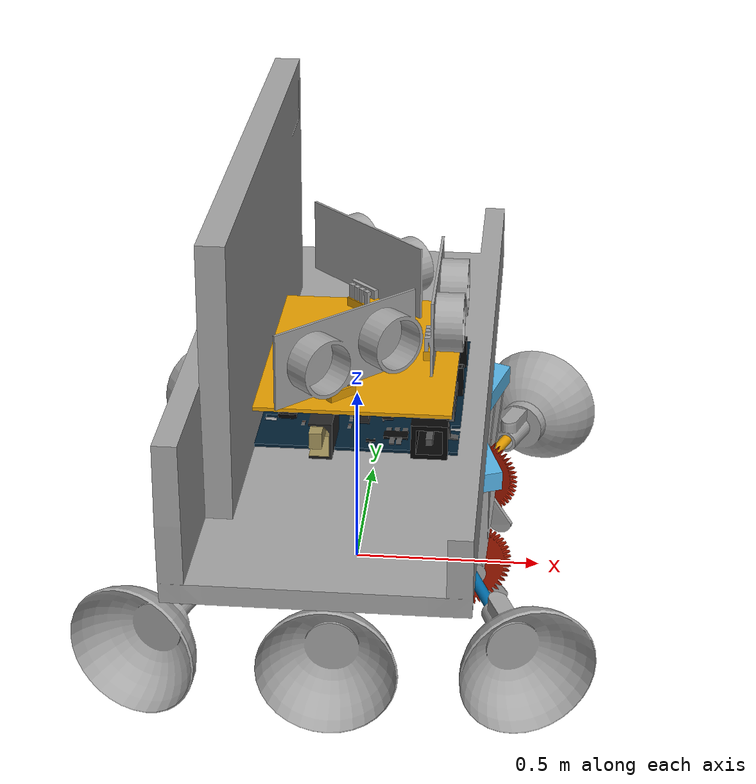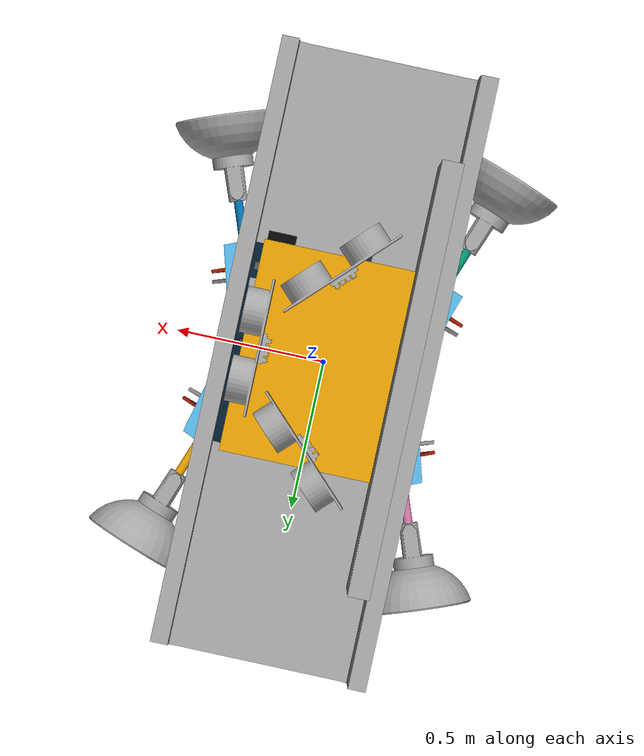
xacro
<?xml version="1.0" ?>

<robot xmlns:xacro="http://www.ros.org/wiki/xacro" name="my6lbot">

<arg name="r200_cam_rgb_px" default="0.005"/>
<arg name="r200_cam_rgb_py" default="0.018"/>
<arg name="r200_cam_rgb_pz" default="0.013"/>
<arg name="r200_cam_depth_offset" default="0.01"/>

<!-- Descripción de la infraestructura del robot, my6lbot -->

<!-- Link odom -->
<link name="odom"/>

<!-- Joint entre Odom y Base_link -->
<joint name="odom_base_link" type="fixed">
    <parent link="odom"/>
    <child link="base_link"/>
</joint>

<!-- Base del robot, my6lbot -->
<link name="base_link">
    <visual>
      <origin rpy="0 0 0" xyz="0 0 0.41"/>
      <geometry>
        <mesh filename="package://my6lbot_description/meshes/base.dae"/>
      </geometry>
    </visual>
    <collision>
      <origin rpy="0 0 0" xyz="0 0 0.41"/>
      <geometry>
        <mesh filename="package://my6lbot_description/meshes/collision_base.dae"/>
      </geometry>
    </collision>
    <inertial>
      <origin rpy="0 0 0" xyz="0.001408 0.005949 0.466723"/>
      <mass value="0.0252004"/>
	<inertia ixx="0.001373556" ixy="0.000000974" ixz="-0.000000008" iyy="0.000990376" iyz="0.000000003" izz="0.002353434"/>
    </inertial>
  </link>

<!-- Estructura de patas cuadradas bajo la base, patas centrales -->

<!-- Pata cuadrada centro izquierda -->
<link name="pata_cuad_centro_izqda">
    <visual>
     <origin rpy="0 -1.5708 1.5708" xyz="0 -0.03 0"/>
      <geometry>
        <mesh filename="package://my6lbot_description/meshes/pata_cuadrada_centro_izqda.dae"/>
      </geometry>
    </visual>
    <collision>
      <origin rpy="0 -1.5708 1.5708" xyz="0 -0.03 0"/>
      <geometry>
        <mesh filename="package://my6lbot_description/meshes/collision_pata_cuadrada.dae"/>
      </geometry>
    </collision>
    <inertial>
      <origin rpy="0 0 0" xyz="-0.131695 -0.022760 -0.025368"/>
      <mass value="0.000011341"/>
      <inertia ixx="0.000000155" ixy="-0.000000026" ixz="-0.000000005" iyy="0.000000099" iyz="-0.000000001" izz="0.000000250"/>
    </inertial>
  </link>

<!-- Joint pata cuadrada centro izquierda con base -->
<joint name="pata_centro_izqda" type="fixed">
       <origin xyz="0 -0.34 0.38" rpy="0 0 0"/>
	<parent link="base_link"/>
        <child link="pata_cuad_centro_izqda"/>
</joint>

<!-- Pata cuadrada centro izquierda trasera -->
<link name="pata_cuad_centro_izqda_tras">
    <visual>
      <origin rpy="0 -1.5708 1.5708" xyz="0 -0.03 0"/>
      <geometry>
        <mesh filename="package://my6lbot_description/meshes/pata_cuadrada_trasera_izqda.dae"/>
      </geometry>
    </visual>
    <collision>
      <origin rpy="0 -1.5708 1.5708" xyz="0 -0.03 0"/>
      <geometry>
        <mesh filename="package://my6lbot_description/meshes/collision_pata_cuadrada_trasera.dae"/>
      </geometry>
    </collision>
    <inertial>
      <origin rpy="0 0 0" xyz="-0.131672 -0.016797 -0.019444"/>
      <mass value="0.000011329"/>
      <inertia ixx="0.000000156" ixy="-0.000000028" ixz="-0.000000008" iyy="0.000000102" iyz="-0.000000002" izz="0.000000250"/>
    </inertial>
  </link>

<!-- Joint pata cuadrada centro izquierda trasera con base -->
<joint name="pata_centro_izqda_tras" type="fixed">
        <origin xyz="0 -0.19 0.38" rpy="0 0 0"/>
        <parent link="base_link"/>
        <child link="pata_cuad_centro_izqda_tras"/>
</joint>

<!-- Pata cuadrada centro derecha -->
<link name="pata_cuad_centro_drcha">
    <visual>
      <origin rpy="0 -1.5708 -1.5708" xyz="0 0.03 0"/>
      <geometry>
        <mesh filename="package://my6lbot_description/meshes/pata_cuadrada_centro_drcha.dae"/>
      </geometry>
    </visual>
    <collision>
      <origin rpy="0 -1.5708 -1.5708" xyz="0 0.03 0"/>
      <geometry>
        <mesh filename="package://my6lbot_description/meshes/collision_pata_cuadrada.dae"/>
      </geometry>
    </collision>
    <inertial>
      <origin rpy="0 0 0" xyz="-0.131695 -0.022760 -0.025368"/>
	<mass value="0.000011341"/>
      <inertia ixx="0.000000155" ixy="-0.000000026" ixz="-0.000000005" iyy="0.000000099" iyz="-0.000000001" izz="0.000000250"/>
    </inertial>
  </link>

<!-- Joint pata cuadrada centro derecha con base -->
<joint name="pata_centro_drcha" type="fixed">
        <origin xyz="0 0.34 0.38" rpy="0 0 0"/>
        <parent link="base_link"/>
        <child link="pata_cuad_centro_drcha"/>
</joint>

<!-- Pata cuadrada centro derecha trasera -->
<link name="pata_cuad_centro_drcha_tras">
    <visual>
      <origin rpy="0 -1.5708 -1.5708" xyz="0 0.03 0"/>
      <geometry>
        <mesh filename="package://my6lbot_description/meshes/pata_cuadrada_trasera_drcha.dae"/>
      </geometry>
    </visual>
    <collision>
      <origin rpy="0 -1.5708 -1.5708" xyz="0 0.03 0"/>
      <geometry>
        <mesh filename="package://my6lbot_description/meshes/collision_pata_cuadrada_trasera.dae"/>
      </geometry>
    </collision>
    <inertial>
      <origin rpy="0 0 0" xyz="-0.131672 -0.016797 -0.019444"/>
      <mass value="0.000011329"/>
      <inertia ixx="0.000000156" ixy="-0.000000028" ixz="-0.000000008" iyy="0.000000102" iyz="-0.000000002" izz="0.000000250"/>
    </inertial>
  </link>

<!-- Joint pata cuadrada centro derecha trasera con base -->
<joint name="pata_centro_drcha_tras" type="fixed">
        <origin xyz="0 0.19 0.38" rpy="0 0 0"/>
        <parent link="base_link"/>
        <child link="pata_cuad_centro_drcha_tras"/>
</joint>

<!-- Estructura de las patas que se encuentran en las esquinas -->

<!-- Esquina izquierda arriba (mirando el robot de frente) -->
<!-- Pata corta -->
<link name="pata_izqda_arriba">
    <visual>
      <origin rpy="0 -1.5708 1.5708" xyz="0 0 -0.055"/>
      <geometry>
        <mesh filename="package://my6lbot_description/meshes/pata_corta.dae"/>
      </geometry>
    </visual>
    <collision>
      <origin rpy="0 -1.5708 1.5708" xyz="0 0 -0.055"/>
      <geometry>
        <mesh filename="package://my6lbot_description/meshes/collision_pata_corta.dae"/>
      </geometry>
    </collision>
    <inertial>
	<origin rpy="0 0 0" xyz="0.1076660 -0.0000496 0.0573439"/>
   	<mass value="0.000030204"/>
     <inertia ixx="0.000000062" ixy="-0.000000034" ixz="0.000000516" iyy="0.000000772" iyz="0.000000000" izz="0.000000710"/>
    </inertial>
  </link>

<!-- Joint pata corta izquierda arriba con base -->
<joint name="izqda_arriba" type="fixed">
        <origin xyz="-0.32 -0.27 0.38" rpy="0 0 -0.349066"/>
        <parent link="base_link"/>
        <child link="pata_izqda_arriba"/>
</joint>

<!-- Pata larga -->
<link name="pata_larga_izqda_arriba">
    <visual>
      <origin rpy="0 1.5708 1.5708" xyz="0.01 0 -0.2"/>
      <geometry>
        <mesh filename="package://my6lbot_description/meshes/pata_larga_izqda.dae"/>
      </geometry>
    </visual>
    <collision>
      <origin rpy="0 1.5708 1.5708" xyz="0.01 0 -0.2"/>
      <geometry>
        <mesh filename="package://my6lbot_description/meshes/collision_pata_larga_izqda.dae"/>
      </geometry>
    </collision>
    <inertial>
      <origin rpy="0 0 0" xyz="-0.033181 0.001102 0.008191"/>
      <mass value="0.000170937"/>
      <inertia ixx="0.000000285" ixy="-0.000000566" ixz="-0.000000404" iyy="0.000002178" iyz="-0.000000106" izz="0.000001977"/>
    </inertial>
  </link>

<!-- Joint pata larga izquierda arriba con base -->
<joint name="larga_izqda_arriba" type="fixed">
        <origin xyz="-0.32 -0.2 0.38" rpy="0 0 -0.349066"/>
        <parent link="base_link"/>
        <child link="pata_larga_izqda_arriba"/>
</joint>

<!-- Equina izquierda abajo (mirando el robot de frente) -->
<!-- Pata corta -->
<link name="pata_izqda_abajo">
    <visual>
      <origin rpy="0 -1.5708 1.5708" xyz="0 0 -0.055"/>
      <geometry>
        <mesh filename="package://my6lbot_description/meshes/pata_corta.dae"/>
      </geometry>
    </visual>
    <collision>
      <origin rpy="0 -1.5708 1.5708" xyz="0 0 -0.055"/>
      <geometry>
        <mesh filename="package://my6lbot_description/meshes/collision_pata_corta.dae"/>
      </geometry>
    </collision>
    <inertial>
	<origin rpy="0 0 0" xyz="0.1076660 -0.0000496 0.0573439"/>
   	<mass value="0.000030204"/>
     <inertia ixx="0.000000062" ixy="-0.000000034" ixz="0.000000516" iyy="0.000000772" iyz="0.000000000" izz="0.000000710"/>
    </inertial>
  </link>

<!-- Joint pata corta izquierda abajo con base -->
<joint name="izqda_abajo" type="fixed">
        <origin xyz="0.32 -0.27 0.38" rpy="0 0 0.349066"/>
        <parent link="base_link"/>
        <child link="pata_izqda_abajo"/>
</joint>

<!-- Pata larga -->
<link name="pata_larga_izqda_abajo">
    <visual>
      <origin rpy="0 -1.5708 -1.5708" xyz="-0.01 0 -0.2"/>
      <geometry>
        <mesh filename="package://my6lbot_description/meshes/pata_larga_drcha.dae"/>
      </geometry>
    </visual>
    <collision>
      <origin rpy="0 -1.5708 -1.5708" xyz="-0.01 0 -0.2"/>
      <geometry>
        <mesh filename="package://my6lbot_description/meshes/collision_pata_larga_drcha.dae"/>
      </geometry>
    </collision>
    <inertial>
      <origin rpy="0 0 0" xyz="-0.033181 0.001102 0.008191"/>
      <mass value="0.000170937"/>
      <inertia ixx="0.000000285" ixy="-0.000000566" ixz="-0.000000404" iyy="0.000002178" iyz="-0.000000106" izz="0.000001977"/>
    </inertial>
  </link>

<!-- Joint pata larga izquierda abajo con base -->
<joint name="larga_izqda_abajo" type="fixed">
        <origin xyz="0.32 -0.2 0.38" rpy="0 0 0.349066"/>
        <parent link="base_link"/>
        <child link="pata_larga_izqda_abajo"/>
</joint>

<!-- Esquina derecha arriba (mirando el robot de frente) -->
<!-- Pata corta -->
<link name="pata_drcha_arriba">
    <visual>
      <origin rpy="0 -1.5708 -1.5708" xyz="0 0 -0.055"/>
      <geometry>
        <mesh filename="package://my6lbot_description/meshes/pata_corta.dae"/>
      </geometry>
    </visual>
    <collision>
      <origin rpy="0 -1.5708 -1.5708" xyz="0 0 -0.055"/>
      <geometry>
        <mesh filename="package://my6lbot_description/meshes/collision_pata_corta.dae"/>
      </geometry>
    </collision>
    <inertial>
	<origin rpy="0 0 0" xyz="0.1076660 -0.0000496 0.0573439"/>
   	<mass value="0.000030204"/>
     <inertia ixx="0.000000062" ixy="-0.000000034" ixz="0.000000516" iyy="0.000000772" iyz="0.000000000" izz="0.000000710"/>
    </inertial>
  </link>

<!-- Joint pata corta derecha arriba con base -->
<joint name="drcha_arriba" type="fixed">
        <origin xyz="-0.32 0.27 0.38" rpy="0 0 0.349066"/>
        <parent link="base_link"/>
        <child link="pata_drcha_arriba"/>
</joint>

<!-- Pata larga -->
<link name="pata_larga_drcha_arriba">
    <visual>
      <origin rpy="0 -1.5708 1.5708" xyz="0.01 0 -0.2"/>
      <geometry>
        <mesh filename="package://my6lbot_description/meshes/pata_larga_drcha.dae"/>
      </geometry>
    </visual>
    <collision>
      <origin rpy="0 -1.5708 1.5708" xyz="0.01 0 -0.2"/>
      <geometry>
        <mesh filename="package://my6lbot_description/meshes/collision_pata_larga_drcha.dae"/>
      </geometry>
    </collision>
    <inertial>
      <origin rpy="0 0 0" xyz="-0.033181 0.001102 0.008191"/>
      <mass value="0.000170937"/>
      <inertia ixx="0.000000285" ixy="-0.000000566" ixz="-0.000000404" iyy="0.000002178" iyz="-0.000000106" izz="0.000001977"/>
    </inertial>
  </link>

<!-- Joint pata larga derecha arriba con base -->
<joint name="larga_drcha_arriba" type="fixed">
        <origin xyz="-0.32 0.2 0.38" rpy="0 0 0.349066"/>
        <parent link="base_link"/>
        <child link="pata_larga_drcha_arriba"/>
</joint>

<!-- Esquina derecha abajo (mirando el robot de frente) -->
<!-- Pata corta -->
<link name="pata_drcha_abajo">
    <visual>
      <origin rpy="0 -1.5708 -1.5708" xyz="0 0 -0.055"/>
      <geometry>
        <mesh filename="package://my6lbot_description/meshes/pata_corta.dae"/>
      </geometry>
    </visual>
    <collision>
      <origin rpy="0 -1.5708 -1.5708" xyz="0 0 -0.055"/>
      <geometry>
        <mesh filename="package://my6lbot_description/meshes/collision_pata_corta.dae"/>
      </geometry>
    </collision>
    <inertial>
	<origin rpy="0 0 0" xyz="0.1076660 -0.0000496 0.0573439"/>
   	<mass value="0.000030204"/>
     <inertia ixx="0.000000062" ixy="-0.000000034" ixz="0.000000516" iyy="0.000000772" iyz="0.000000000" izz="0.000000710"/>
    </inertial>
  </link>

<!-- Joint pata corta derecha abajo con base -->
<joint name="drcha_abajo" type="fixed">
        <origin xyz="0.32 0.27 0.38" rpy="0 0 -0.349066"/>
        <parent link="base_link"/>
        <child link="pata_drcha_abajo"/>
</joint>

<!-- Pata larga -->
<link name="pata_larga_drcha_abajo">
    <visual>
      <origin rpy="0 1.5708 -1.5708" xyz="-0.01 0 -0.2"/>
      <geometry>
        <mesh filename="package://my6lbot_description/meshes/pata_larga_izqda.dae"/>
      </geometry>
    </visual>
    <collision>
      <origin rpy="0 1.5708 -1.5708" xyz="-0.01 0 -0.2"/>
      <geometry>
        <mesh filename="package://my6lbot_description/meshes/collision_pata_larga_izqda.dae"/>
      </geometry>
    </collision>
    <inertial>
      <origin rpy="0 0 0" xyz="-0.033181 0.001102 0.008191"/>
      <mass value="0.000170937"/>
      <inertia ixx="0.000000285" ixy="-0.000000566" ixz="-0.000000404" iyy="0.000002178" iyz="-0.000000106" izz="0.000001977"/>
    </inertial>
  </link>

<!-- Joint pata larga derecha abajo con base -->
<joint name="larga_drcha_abajo" type="fixed">
        <origin xyz="0.32 0.2 0.38" rpy="0 0 -0.349066"/>
        <parent link="base_link"/>
        <child link="pata_larga_drcha_abajo"/>
</joint>

<!-- Ejes y ruedas del robot, my6lbot -->

<!-- Centrales -->
<!-- Eje centro izquierda -->
<link name="eje_centro_izqda">
    <visual>
      <origin rpy="1.5708 0 0" xyz="0 -0.04 0"/>
      <geometry>
        <mesh filename="package://my6lbot_description/meshes/eje.dae"/>
      </geometry>
    </visual>
    <collision>
      <origin rpy="1.5708 0 0" xyz="0 -0.04 0"/>
      <geometry>
        <mesh filename="package://my6lbot_description/meshes/collision_eje.dae"/>
      </geometry>
    </collision>
    <inertial>
      <origin rpy="0 0 0" xyz="0 0 0"/>
	<mass value="0.00056233"/>
      <inertia ixx="0.000007530" ixy="0" ixz="-0" iyy="0.000007530" iyz="0" izz="0.000000063"/>
    </inertial>
  </link>

<!-- Joint eje con pata centro izquierda -->
<joint name="eje_pata_centro_izqda" type="fixed">
    <parent link="pata_cuad_centro_izqda"/>
    <child link="eje_centro_izqda"/>
    <origin xyz="0 0 -0.245" rpy="0 0 0"/>
</joint>

<!-- Rueda centro izquierda -->
<link name="rueda_centro_izqda">
    <visual>
      <origin rpy="3.14159 3.14159 0" xyz="0 -0.1 0"/>
      <geometry>
        <mesh filename="package://my6lbot_description/meshes/rueda.dae"/>
      </geometry>
    </visual>
    <collision>
      <origin rpy="3.14159 3.14159 0" xyz="0 -0.1 0"/>
      <geometry>
        <mesh filename="package://my6lbot_description/meshes/collision_rueda.dae"/>
      </geometry>
    </collision>
    <inertial>
    <origin rpy="0 0 0" xyz="0 -0.1 0"/>
	<mass value="0.001930063"/>
      <inertia ixx="0.000022026" ixy="-0.000000134" ixz="0.000000006" iyy="0.000022416" iyz="0.000000194" izz="0.000021696"/>
    </inertial>
  </link>

<!-- Joint rueda centro izquierda con eje -->
 <joint name="rueda_eje_centro_izqda" type="continuous">
    <axis xyz="0 1 0"/>
    <parent link="eje_centro_izqda"/>
    <child link="rueda_centro_izqda"/>
    <origin xyz="0 -0.2 0" rpy="0 0 0"/>
 </joint>

<!-- Eje centro derecha -->
<link name="eje_centro_drcha">
    <visual>
      <origin rpy="1.5708 0 0" xyz="0 0.04 0"/>
      <geometry>
        <mesh filename="package://my6lbot_description/meshes/eje.dae"/>
      </geometry>
    </visual>
    <collision>
      <origin rpy="1.5708 0 0" xyz="0 0.04 0"/>
      <geometry>
        <mesh filename="package://my6lbot_description/meshes/collision_eje.dae"/>
      </geometry>
    </collision>
    <inertial>
     <origin rpy="0 0 0" xyz="0 0 0"/>
	<mass value="0.00056233"/>
      <inertia ixx="0.000007530" ixy="0" ixz="-0" iyy="0.000007530" iyz="0" izz="0.000000063"/>
    </inertial>
  </link>

<!-- Joint eje con pata centro derecha -->
<joint name="eje_pata_centro_drcha" type="fixed">
    <parent link="pata_cuad_centro_drcha"/>
    <child link="eje_centro_drcha"/>
    <origin xyz="0 0 -0.245" rpy="0 0 0"/>
  </joint>

<!-- Rueda centro derecha -->
<link name="rueda_centro_drcha">
    <visual>
	 <origin rpy="0 0 0" xyz="0 0.1 0"/>
      <geometry>
        <mesh filename="package://my6lbot_description/meshes/rueda.dae"/>
      </geometry>
    </visual>
    <collision>
      <origin rpy="0 0 0" xyz="0 0.1 0"/>
      <geometry>
        <mesh filename="package://my6lbot_description/meshes/collision_rueda.dae"/>
      </geometry>
    </collision>
    <inertial>
     <origin rpy="0 0 0" xyz="0 0.1 0"/>
	<mass value="0.001930063"/>
      <inertia ixx="0.000022026" ixy="-0.000000134" ixz="0.000000006" iyy="0.000022416" iyz="0.000000194" izz="0.000021696"/>
    </inertial>
  </link>

<!-- Joint rueda centro derecha con eje -->
<joint name="rueda_eje_centro_drcha" type="continuous">
    <axis xyz="0 1 0"/>
    <parent link="eje_centro_drcha"/>
    <child link="rueda_centro_drcha"/>
    <origin xyz="0 0.2 0" rpy="0 0 0"/>
  </joint>

<!-- Lado Izquierdo -->
<!-- Eje izquierda arriba -->
<link name="eje_izqda_arriba">
    <visual>
      <origin rpy="0 1.5708 1.5708" xyz="0 -0.1 0"/>
      <geometry>
        <mesh filename="package://my6lbot_description/meshes/eje.dae"/>
      </geometry>
    </visual>
    <collision>
      <origin rpy="0 1.5708 1.5708" xyz="0 -0.1 0"/>
      <geometry>
        <mesh filename="package://my6lbot_description/meshes/collision_eje.dae"/>
      </geometry>
    </collision>
    <inertial>
      <origin rpy="0 0 0" xyz="0 0 0"/>
	<mass value="0.00056233"/>
      <inertia ixx="0.000007530" ixy="0" ixz="-0" iyy="0.000007530" iyz="0" izz="0.000000063"/>
    </inertial>
  </link>

<!-- Joint pata izquierda arriba con eje -->
<joint name="eje_pata_izqda_arriba" type="fixed">
        <parent link="pata_izqda_arriba"/>
        <child link="eje_izqda_arriba"/>
	<origin xyz="0 0 -0.245" rpy="0 0 0"/>
	</joint>

<!-- Rueda izquierda arriba -->
<link name="rueda_izqda_arriba">
    <visual>
      <origin rpy="3.14159 3.14159 0" xyz="0 -0.1 0"/>
      <geometry>
        <mesh filename="package://my6lbot_description/meshes/rueda.dae"/>
      </geometry>
    </visual>
    <collision>
      <origin rpy="3.14159 3.14159 0" xyz="0 -0.1 0"/>
      <geometry>
        <mesh filename="package://my6lbot_description/meshes/collision_rueda.dae"/>
      </geometry>
    </collision>
    <inertial>
     <origin rpy="0 0 0" xyz="0 -0.1 0"/>
	<mass value="0.001930063"/>
      <inertia ixx="0.000022026" ixy="-0.000000134" ixz="0.000000006" iyy="0.000022416" iyz="0.000000194" izz="0.000021696"/>
    </inertial>
  </link>

<!-- Joint rueda izquierda arriba con eje -->
<joint name="rueda_eje_izqda_arriba" type="continuous">
	<axis xyz="0 1 0"/>
        <parent link="eje_izqda_arriba"/>
        <child link="rueda_izqda_arriba"/>
	<origin xyz="0 -0.25 0" rpy="0 0 0"/>
</joint>

<!-- Eje izquierda abajo -->
<link name="eje_izqda_abajo">
    <visual>
      <origin rpy="0 -1.5708 1.5708" xyz="0 -0.1 0"/>
      <geometry>
        <mesh filename="package://my6lbot_description/meshes/eje.dae"/>
      </geometry>
    </visual>
    <collision>
      <origin rpy="0 -1.5708 1.5708" xyz="0 -0.1 0"/>
      <geometry>
        <mesh filename="package://my6lbot_description/meshes/collision_eje.dae"/>
      </geometry>
    </collision>
    <inertial>
      <origin rpy="0 0 0" xyz="0 0 0"/>
	<mass value="0.00056233"/>
      <inertia ixx="0.000007530" ixy="0" ixz="-0" iyy="0.000007530" iyz="0" izz="0.000000063"/>
    </inertial>
  </link>

<!-- Joint pata izquierda abajo con eje -->
<joint name="eje_pata_izqda_abajo" type="fixed">
	<origin xyz="0 0 -0.245" rpy="0 0 0"/>
        <parent link="pata_izqda_abajo"/>
        <child link="eje_izqda_abajo"/>
</joint>

<!-- Rueda izquierda abajo -->
<link name="rueda_izqda_abajo">
    <visual>
    <origin rpy="3.14159 3.14159 0" xyz="0 -0.1 0"/>
      <geometry>
        <mesh filename="package://my6lbot_description/meshes/rueda.dae"/>
      </geometry>
    </visual>
    <collision>
      <origin rpy="3.14159 3.14159 0" xyz="0 -0.1 0"/>
      <geometry>
        <mesh filename="package://my6lbot_description/meshes/collision_rueda.dae"/>
      </geometry>
    </collision>
    <inertial>
    <origin rpy="0 0 0" xyz="0 -0.1 0"/>
	<mass value="0.001930063"/>
      <inertia ixx="0.000022026" ixy="-0.000000134" ixz="0.000000006" iyy="0.000022416" iyz="0.000000194" izz="0.000021696"/>
    </inertial>
  </link>

<!-- Joint rueda izquierda abajo con eje -->
<joint name="rueda_eje_izqda_abajo" type="continuous">
	<axis xyz="0 1 0"/>
        <origin xyz="0 -0.25 0" rpy="0 0 0"/>
        <parent link="eje_izqda_abajo"/>
        <child link="rueda_izqda_abajo"/>
</joint>

<!-- Lado Derecho -->
<!-- Eje derecha arriba -->
<link name="eje_drcha_arriba">
    <visual>
      <origin rpy="0 -1.5708 1.5708" xyz="0 0.1 0"/>
      <geometry>
        <mesh filename="package://my6lbot_description/meshes/eje.dae"/>
      </geometry>
    </visual>
    <collision>
      <origin rpy="0 -1.5708 1.5708" xyz="0 0.1 0"/>
      <geometry>
        <mesh filename="package://my6lbot_description/meshes/collision_eje.dae"/>
      </geometry>
    </collision>
    <inertial>
      <origin rpy="0 0 0" xyz="0 0 0"/>
	<mass value="0.00056233"/>
      <inertia ixx="0.000007530" ixy="0" ixz="-0" iyy="0.000007530" iyz="0" izz="0.000000063"/>
    </inertial>
  </link>

<!-- Joint eje derecha arriba con pata -->
<joint name="eje_pata_drcha_arriba" type="fixed">
        <origin xyz="0 0 -0.245" rpy="0 0 0"/>
        <parent link="pata_drcha_arriba"/>
        <child link="eje_drcha_arriba"/>
</joint>

<!-- Rueda derecha arriba -->
<link name="rueda_drcha_arriba">
    <visual>
      <origin rpy="0 0 0" xyz="0 0.1 0"/>
      <geometry>
        <mesh filename="package://my6lbot_description/meshes/rueda.dae"/>
      </geometry>
    </visual>
    <collision>
      <origin rpy="0 0 0" xyz="0 0.1 0"/>
      <geometry>
        <mesh filename="package://my6lbot_description/meshes/collision_rueda.dae"/>
      </geometry>
    </collision>
    <inertial>
    <origin rpy="0 0 0" xyz="0 0.1 0"/>

	<mass value="0.001930063"/>
      <inertia ixx="0.000022026" ixy="-0.000000134" ixz="0.000000006" iyy="0.000022416" iyz="0.000000194" izz="0.000021696"/>
    </inertial>
  </link>

<!-- Joint rueda derecha arriba con eje -->
<joint name="rueda_eje_drcha_arriba" type="continuous">
	<axis xyz="0 1 0"/>
        <parent link="eje_drcha_arriba"/>
        <child link="rueda_drcha_arriba"/>
	<origin xyz="0 0.25 0" rpy="0 0 0"/>
</joint>

<!-- Eje derecha abajo -->
<link name="eje_drcha_abajo">
    <visual>
      <origin rpy="0 1.5708 -1.5708" xyz="0 0.1 0"/>
      <geometry>
        <mesh filename="package://my6lbot_description/meshes/eje.dae"/>
      </geometry>
    </visual>
    <collision>
      <origin rpy="0 1.5708 -1.5708" xyz="0 0.1 0"/>
      <geometry>
        <mesh filename="package://my6lbot_description/meshes/collision_eje.dae"/>
      </geometry>
    </collision>
    <inertial>
      <origin rpy="0 0 0" xyz="0 0 0"/>
	<mass value="0.00056233"/>
      <inertia ixx="0.000007530" ixy="0" ixz="-0" iyy="0.000007530" iyz="0" izz="0.000000063"/>
    </inertial>
  </link>

<!-- Joint eje derecha abajo con pata -->
<joint name="eje_pata_drcha_abajo" type="fixed">
        <parent link="pata_drcha_abajo"/>
        <child link="eje_drcha_abajo"/>
	<origin xyz="0 0 -0.245" rpy="0 0 0"/>
</joint>

<!-- Rueda derecha abajo  -->
<link name="rueda_drcha_abajo">
    <visual>
      <origin rpy="0 0 0" xyz="0 0.1 0"/>
      <geometry>
        <mesh filename="package://my6lbot_description/meshes/rueda.dae"/>
      </geometry>
    </visual>
    <collision>
      <origin rpy="0 0 0" xyz="0 0.1 0"/>
      <geometry>
        <mesh filename="package://my6lbot_description/meshes/collision_rueda.dae"/>
      </geometry>
    </collision>
    <inertial>
    <origin rpy="0 0 0" xyz="0 0.1 0"/>
	<mass value="0.001930063"/>
      <inertia ixx="0.000022026" ixy="-0.000000134" ixz="0.000000006" iyy="0.000022416" iyz="0.000000194" izz="0.000021696"/>
    </inertial>
  </link>

<!-- Joint rueda derecha abajo con eje -->
<joint name="rueda_eje_drcha_abajo" type="continuous">
	<axis xyz="0 1 0"/>
        <parent link="eje_drcha_abajo"/>
        <child link="rueda_drcha_abajo"/>
	<origin xyz="0 0.25 0" rpy="0 0 0"/>
</joint>

<!-- Engranajes de las 4 esquinas -->

<!-- Engranaje izquierda arriba -->
<link name="engranaje_izqda_arriba">
    <visual>
      <origin rpy="0 1.5708 1.5708" xyz="0 -0.01 0"/>
      <geometry>
        <mesh filename="package://my6lbot_description/meshes/engranaje_esquinas_naranja.dae"/>
      </geometry>
    </visual>
    <collision>
      <origin rpy="0 1.5708 1.5708" xyz="0 -0.01 0"/>
      <geometry>
        <mesh filename="package://my6lbot_description/meshes/collision_engranaje_esquinas.dae"/>
      </geometry>
    </collision>
    <inertial>
      <origin rpy="0 0 0" xyz="0 0 0"/>
      <mass value="0.00056233"/>
      <inertia ixx="0.000007530" ixy="0" ixz="-0" iyy="0.000007530" iyz="0" izz="0.000000063"/>
    </inertial>
  </link>

<!-- Joint engranaje izquierda arriba con eje izquierda arriba -->
<joint name="engranaje_eje_izqda_arriba" type="fixed">
	<origin xyz="0 0.025 0" rpy="0 0 0"/>
        <parent link="eje_izqda_arriba"/>
        <child link="engranaje_izqda_arriba"/>
</joint>

<!-- Engranaje izquierda abajo -->
<link name="engranaje_izqda_abajo">
    <visual>
      <origin rpy="0 -1.5708 -1.5708" xyz="0 -0.01 0"/>
      <geometry>
        <mesh filename="package://my6lbot_description/meshes/engranaje_esquinas_naranja.dae"/>
      </geometry>
    </visual>
    <collision>
      <origin rpy="0 -1.5708 -1.5708" xyz="0 -0.01 0"/>
      <geometry>
        <mesh filename="package://my6lbot_description/meshes/collision_engranaje_esquinas.dae"/>
      </geometry>
    </collision>
    <inertial>
      <origin rpy="0 0 0" xyz="0 0 0"/>
	<mass value="0.00056233"/>
      <inertia ixx="0.000007530" ixy="0" ixz="-0" iyy="0.000007530" iyz="0" izz="0.000000063"/>
    </inertial>
  </link>

<!-- Joint engranaje izquierda abajo con eje izqda abajo -->
<joint name="engranaje_eje_izqda_abajo" type="fixed">
	<origin xyz="0 0.025 0" rpy="0 0 0"/>
        <parent link="eje_izqda_abajo"/>
        <child link="engranaje_izqda_abajo"/>
</joint>

<!-- Engranaje derecha arriba-->
<link name="engranaje_drcha_arriba">
    <visual>
      <origin rpy="0 -1.5708 1.5708" xyz="0 0.01 0"/>
      <geometry>
        <mesh filename="package://my6lbot_description/meshes/engranaje_esquinas_naranja.dae"/>
      </geometry>
    </visual>
    <collision>
      <origin rpy="0 -1.5708 1.5708" xyz="0 0.01 0"/>
      <geometry>
        <mesh filename="package://my6lbot_description/meshes/collision_engranaje_esquinas.dae"/>
      </geometry>
    </collision>
    <inertial>
      <origin rpy="0 0 0" xyz="0 0 0"/>
	<mass value="0.00056233"/>
      <inertia ixx="0.000007530" ixy="0" ixz="-0" iyy="0.000007530" iyz="0" izz="0.000000063"/>
    </inertial>
  </link>

<!-- Joint engranaje derecha arriba con eje derecha arriba -->
<joint name="engranaje_eje_drcha_arriba" type="fixed">
	<origin xyz="0 -0.025 0" rpy="0 0 0"/>
        <parent link="eje_drcha_arriba"/>
        <child link="engranaje_drcha_arriba"/>
</joint>

<!-- Engranaje derecha abajo -->
<link name="engranaje_drcha_abajo">
    <visual>
      <origin rpy="0 1.5708 -1.5708" xyz="0.004 0.01 0"/>
      <geometry>
        <mesh filename="package://my6lbot_description/meshes/engranaje_esquinas_naranja.dae"/>
      </geometry>
    </visual>
    <collision>
      <origin rpy="0 1.5708 -1.5708" xyz="0.004 0.01 0"/>
      <geometry>
        <mesh filename="package://my6lbot_description/meshes/collision_engranaje_esquinas.dae"/>
      </geometry>
    </collision>
    <inertial>
      <origin rpy="0 0 0" xyz="0 0 0"/>
	<mass value="0.00056233"/>
      <inertia ixx="0.000007530" ixy="0" ixz="-0" iyy="0.000007530" iyz="0" izz="0.000000063"/>
    </inertial>
  </link>

<!-- Joint 31: eje derecha abajo con engranaje derecha abajo -->
<joint name="engranaje_eje_drcha_abajo" type="fixed">
	<origin xyz="0 -0.025 0" rpy="0 0 0"/>
        <parent link="eje_drcha_abajo"/>
        <child link="engranaje_drcha_abajo"/>
</joint>

<!-- Plataforma superior, colocada sobre la base, en la que ubicaremos el móvil, la placa de motores, la placa Arduino y los sensores -->
  <link name="plataforma">
    <visual>
      <origin rpy="0 0 -1.5708" xyz="0 0 0"/>
      <geometry>
        <mesh filename="package://my6lbot_description/meshes/plataforma.dae"/>
      </geometry>
    </visual>
    <collision>
      <origin rpy="0 0 -1.5708" xyz="0 0 0"/>
      <geometry>
        <mesh filename="package://my6lbot_description/meshes/collision_plataforma.dae"/>
      </geometry>
    </collision>
    <inertial>
     <origin rpy="0 0 0" xyz="0.001326 -0.118987 0.144776"/>
      <mass value="0.014841271"/>
	<inertia ixx="0.005568011" ixy="-0.000000796" ixz="0.000206859" iyy="0.001531249" iyz="-0.000000757" izz="0.006758632"/> <!-- Intercambiamos xx e yy de los valores obtenidos-->
    </inertial>
  </link>

<!-- Joint plataforma superior con base  -->
<joint name="plataforma_base" type="fixed">
        <origin xyz="0 0 0.475" rpy="0 0 0"/>
        <parent link="base_link"/>
        <child link="plataforma"/>
</joint>

<!-- Placa Arduino-->
 <link name="arduino">
    <visual>
      <origin rpy="0 0 1.5708" xyz="0 0 0"/>
      <geometry>
        <mesh filename="package://my6lbot_description/meshes/arduino.dae"/>
      </geometry>
    </visual>
    <collision>
      <origin rpy="0 0 1.5708" xyz="0 0 0"/>
      <geometry>
        <mesh filename="package://my6lbot_description/meshes/collision_arduino.dae"/>
      </geometry>
    </collision>
    <inertial>
	 <origin rpy="0 0 0" xyz="-0.032426 -0.040293 0.053334"/>
       <mass value="0.048376644"/>

	<inertia ixx="0.002444384" ixy="0.000000000" ixz="-0.000000000" iyy="0.001236856" iyz="-0.000000000" izz="0.003572747"/> <!--intercambiamos xx e yy de los valores obtenidos -->
   </inertial>
  </link>

<!-- Joint placa arduino con plataforma -->
<joint name="placa_arduino_plataforma" type="fixed">
        <origin xyz="0 0 0.03" rpy="0 0 0"/>
        <parent link="plataforma"/>
        <child link="arduino"/>
</joint>

<!-- Placa para el control de motores -->
  <link name="control_motores">
    <visual>
      <origin rpy="0 0 0" xyz="0.02 0 0"/>
      <geometry>
        <mesh filename="package://my6lbot_description/meshes/placa_motores.dae"/>
      </geometry>
    </visual>
    <collision>
      <origin rpy="0 0 0" xyz="0.02 0 0"/>
      <geometry>
        <mesh filename="package://my6lbot_description/meshes/collision_placa_motores.dae"/>
      </geometry>
    </collision>
    <inertial>
        <origin rpy="0 0 0" xyz="-0.000745 -0.000582 0.011053"/>

	<mass value="0.030402384"/>

	<inertia ixx="0.000654234" ixy="0.000000000" ixz="-0.000000000" iyy="0.001260018" iyz="-0.000000000" izz="0.001905036"/>
	</inertial>
  </link>

<!-- Joint placa control motores con placa arduino -->
<joint name="control_motores_arduino" type="fixed">
        <origin xyz="0 0 0.113" rpy="0 0 0"/>
	<parent link="arduino"/>
        <child link="control_motores"/>
</joint>

<!-- Móvil-->
<link name="movil">
    <visual>
      <origin rpy="1.5708 3.14159 -1.5708" xyz="0 0 0"/>
      <geometry>
        <mesh filename="package://my6lbot_description/meshes/movil_sc.dae"/>
      </geometry>
    </visual>
    <collision>
      <origin rpy="1.5708 3.14159 -1.5708" xyz="0 0 0"/>
      <geometry>
        <mesh filename="package://my6lbot_description/meshes/collision_movil.dae"/>
      </geometry>
    </collision>
    <inertial>
	<origin rpy="0 0 0" xyz="0.265 0 -0.55"/>
  	<mass value="0.068563110"/>
	<inertia ixx="0.011219955" ixy="0.000005251" ixz="0.000000305" iyy="0.002826898" iyz="-0.000000732" izz="0.013990914"/>
    </inertial>
  </link>

<!-- Joint móvil con plataforma -->
<joint name="movil_plataforma" type="fixed">
        <origin xyz="-0.265 0 0.375" rpy="0 0 0"/>
        <parent link="plataforma"/>
        <child link="movil"/>
</joint>

<!-- Cámara del móvil -->
<link name="camera_link">
 <visual>
      <origin rpy="0 1.5708 0" xyz="0 0.24 0.625"/>
      <geometry>
        <mesh filename="package://my6lbot_description/meshes/camera.dae"/>
      </geometry>
    </visual>
    <collision>
      <origin rpy="0 1.5708 0" xyz="0 0 0"/>
      <geometry>
        <mesh filename="package://my6lbot_description/meshes/collision_camera.dae"/>
      </geometry>
    </collision>
    <inertial>
  	<origin rpy="0 0 0" xyz="0.619362 -0.243069 -0.014446"/>
  	<mass value="0.000193369"/>
	<inertia ixx="0.000000070" ixy="-0.000000000" ixz="-0.000000000" iyy="0.000000070" iyz="0.000000000" izz="0.000000060"/>
    </inertial>
  </link>

<!-- Joint cámara con móvil -->
<joint name="camera_movil" type="fixed">
<origin xyz="0.025 0.62 0.24" rpy="0 0 0"/>
        <parent link="movil"/>
        <child link="camera_link"/>
</joint>

<!-- Sensores -->

<!-- Sensor frontal -->
  <link name="hc_sr04_2">
    <visual>
      <origin rpy="0 1.5708 0" xyz="0 0 0"/>
      <geometry>
        <mesh filename="package://my6lbot_description/meshes/sensor.dae"/>
      </geometry>
    </visual>
    <collision>
      <origin rpy="0 1.5708 0" xyz="-0.03 0 0"/>
      <geometry>
        <mesh filename="package://my6lbot_description/meshes/collision_sensor.dae"/>
      </geometry>
    </collision>
    <inertial>
	<origin rpy="0 0 0" xyz="0.0264374 -0.0028550 0.2141432"/>
    <mass value="0.000627506"/>
       <inertia ixx="0.000014895" ixy="-0.000000442" ixz="0.000003847" iyy="0.000016911" iyz="-0.000000146" izz="0.000005403"/>
    </inertial>
  </link>

<!-- Joint sensor frontal con placa control de motores -->
<joint name="sensor_frontal" type="fixed">
        <origin xyz="0.21 0 0.15" rpy="0 0 0"/>
        <parent link="control_motores"/>
        <child link="hc_sr04_2"/>
</joint>

<!-- Sensor derecha -->
<link name="hc_sr04_3">
    <visual>
      <origin rpy="0 1.5708 0" xyz="0 0 0"/>
      <geometry>
        <mesh filename="package://my6lbot_description/meshes/sensor.dae"/>
      </geometry>
    </visual>
    <collision>
      <origin rpy="0 1.5708 0" xyz="-0.03 0 0"/>
      <geometry>
        <mesh filename="package://my6lbot_description/meshes/collision_sensor.dae"/>
      </geometry>
    </collision>
    <inertial>
	<origin rpy="0 0 0" xyz="0.0264374 -0.0028550 0.2141432"/>
	 <mass value="0.000627506"/>
      <inertia ixx="0.000014895" ixy="-0.000000442" ixz="0.000003847" iyy="0.000016911" iyz="-0.000000146" izz="0.000005403"/>
	</inertial>
  </link>

<!-- Joint sensor derecha con placa control de motores -->
<joint name="sensor_drcha" type="fixed">
	<origin xyz="0 0.29 0.15" rpy="0 0 0.785398"/>
        <parent link="control_motores"/>
        <child link="hc_sr04_3"/>
</joint>

<!-- Sensor izquierda -->
<link name="hc_sr04_1">
    <visual>
	<origin rpy="0 1.5708 0" xyz="0 0 0"/>
      <geometry>
        <mesh filename="package://my6lbot_description/meshes/sensor.dae"/>
      </geometry>
    </visual>
    <collision>
      <origin rpy="0 1.5708 0" xyz="-0.03 0 0"/>
      <geometry>
        <mesh filename="package://my6lbot_description/meshes/collision_sensor.dae"/>
      </geometry>
    </collision>
    <inertial>
	<origin rpy="0 0 0" xyz="0.0264374 -0.0028550 0.2141432"/>
	<mass value="0.000627506"/>
      <inertia ixx="0.000014895" ixy="-0.000000442" ixz="0.000003847" iyy="0.000016911" iyz="-0.000000146" izz="0.000005403"/>
    </inertial>
  </link>

<!-- Joint sensor izquierda con placa control de motores -->
<joint name="sensor_izqda" type="fixed">
        <origin xyz="0 -0.29 0.15" rpy="0 0 -0.785398"/>
        <parent link="control_motores"/>
        <child link="hc_sr04_1"/>
</joint>

<!-- IMU sensor  -->
<link name="IMU_link">
  <inertial>
    <mass value="0.001"/>
    <origin rpy="0 0 0" xyz="0 0 0"/>
    <inertia ixx="0.0001" ixy="0" ixz="0" iyy="0.000001" iyz="0" izz="0.0001"/>
  </inertial>
  <visual>
    <origin rpy="0 0 0" xyz="0 0 0"/>
    <geometry>
      <box size="0.01 0.01 0.01"/>
    </geometry>
  </visual>
  <collision>
    <origin rpy="0 0 0" xyz="0 0 0"/>
    <geometry>
      <box size=".01 .01 .01"/>
    </geometry>
  </collision>
</link>

<!-- Joint sensor IMU con base_link -->
<joint name="IMU_joint" type="fixed">
    <origin xyz="0 0 0.39" rpy="0 0 0"/>
    <parent link="base_link"/>
    <child link="IMU_link"/>
  </joint>

<!-- Plugins -->

<!-- Plugin diferencial para el movimiento de las 6 ruedas -->
<gazebo>
      <plugin name="diffdrive_plugin_multiwheel" filename="libdiffdrive_plugin_multi_wheel.so">
        <alwaysOn>true</alwaysOn>
        <updateRate>25.0</updateRate>
        <leftJoints>rueda_eje_centro_izqda rueda_eje_izqda_abajo rueda_eje_izqda_arriba</leftJoints>
        <rightJoints>rueda_eje_centro_drcha rueda_eje_drcha_arriba rueda_eje_drcha_abajo</rightJoints>
        <wheelSeparation>1</wheelSeparation>
        <wheelDiameter>0.35</wheelDiameter>
        <torque>50000</torque>
        <robotBaseFrame>base_link</robotBaseFrame>
	<odometryFrame>odom</odometryFrame>
        <commandTopic>cmd_vel</commandTopic>
	<odometryTopic>odom</odometryTopic>
        <publishOdometryTf>0</publishOdometryTf>
        <publishOdometryMsg>1</publishOdometryMsg>
      </plugin>
</gazebo>

<!-- Plugin Cámara Kinect-->

<gazebo reference="camera_link">
    <sensor type="depth" name="camera">
      <pose>$(arg r200_cam_rgb_px) $(arg r200_cam_rgb_py) $(arg r200_cam_rgb_pz) 0 0 0</pose>
      <always_on>true</always_on>
      <visualize>0</visualize>
      <camera>
          <horizontal_fov>1.02974</horizontal_fov>
          <image>
              <width>640</width>
              <height>480</height>
              <format>R8G8B8</format>
          </image>
          <depth_camera></depth_camera>
          <clip>
              <near>0.02</near>
              <far>300</far>
          </clip>
      </camera>
      <plugin name="camera_controller" filename="libgazebo_ros_openni_kinect.so">
        <pose>$(arg r200_cam_depth_offset) 0 0 0 0 0</pose>
        <alwaysOn>true</alwaysOn>
            <updateRate>30.0</updateRate>
            <cameraName>camera</cameraName>
            <frameName>camera_link</frameName>
        <imageTopicName>image</imageTopicName>
        <depthImageTopicName>depth/image</depthImageTopicName>
        <pointCloudTopicName>depth/points</pointCloudTopicName>
        <cameraInfoTopicName>camera_info</cameraInfoTopicName>
        <depthImageCameraInfoTopicName>depth/camera_info</depthImageCameraInfoTopicName>
        <pointCloudCutoff>0.4</pointCloudCutoff>
            <hackBaseline>0.07</hackBaseline>
            <distortionK1>0.0</distortionK1>
            <distortionK2>0.0</distortionK2>
            <distortionK3>0.0</distortionK3>
            <distortionT1>0.0</distortionT1>
            <distortionT2>0.0</distortionT2>
        <CxPrime>0.0</CxPrime>
        <Cx>0.0</Cx>
        <Cy>0.0</Cy>
        <focalLength>0.0</focalLength>
      </plugin>
    </sensor>
  </gazebo>

<!-- Plugins para los sersores ultrasonido -->

 <!-- Plugin Sensor Izquierda -->
<gazebo reference="hc_sr04_1">
      <sensor type="ray" name="hc_sr04_1">
	  <pose>-1.5708 -1.5708 -1.5708 0 0 0</pose>
	  <visualize>true</visualize>
	  <update_rate>30</update_rate>
	<ray>
          <scan>
            <horizontal>
      	      <samples>32</samples>
      	      <resolution>1</resolution>
      	      <min_angle>-0.3926991</min_angle>
      	      <max_angle>0.3926991</max_angle>
            </horizontal>
          </scan>
          <range>
            <min>0.02</min>
            <max>3</max> <!-- El máx rango según datacheet es 4 pero pondremos 3 por la representación en Gazebo -->
            <resolution>0.02</resolution>
          </range>
	  <noise>
            <mean>0.0</mean>
            <stddev>0.02</stddev>
          </noise>
	</ray>
	<plugin name="hc_sr04_1_plugin" filename="libgazebo_ros_range.so">
	  <gaussianNoise>0.005</gaussianNoise>
	  <always_on>true</always_on>
	  <update_rate>30</update_rate>
          <topicName>hc_sr04_1</topicName>
          <frameName>hc_sr04_1</frameName>
	  <frameId>hc_sr04_1</frameId>
	  <fov>32</fov>
	  <radiation>ultrasound</radiation>
	</plugin>
      </sensor>
</gazebo>

 <!-- Plugin Sensor Derecha-->
<gazebo reference="hc_sr04_3">
      <sensor type="ray" name="hc_sr04_3">
	  <pose>0 0 0 0 0 1.5708</pose>
	  <visualize>true</visualize>
	  <update_rate>30</update_rate>
	<ray>
          <scan>
            <horizontal>
      	      <samples>32</samples>
      	      <resolution>1</resolution>
      	      <min_angle>-0.3926991</min_angle>
      	      <max_angle>0.3926991</max_angle>
            </horizontal>
          </scan>
          <range>
            <min>0.02</min>
            <max>3</max> <!-- El máx rango según datacheet es 4 pero pondremos 3 por la representación en Gazebo -->
            <resolution>0.02</resolution>
          </range>
	</ray>
	<plugin name="hc_sr04_3_plugin" filename="libgazebo_ros_range.so">
	  <gaussianNoise>0.005</gaussianNoise>
	  <always_on>true</always_on>
	  <update_rate>30</update_rate>
          <topicName>hc_sr04_3</topicName>
          <frameName>hc_sr04_3</frameName>
	  <frameId>hc_sr04_3</frameId>
	  <fov>32</fov>
	  <radiation>ultrasound</radiation>
	</plugin>
      </sensor>
</gazebo>

<!-- Plugin Sensor Central -->
 <gazebo reference="hc_sr04_2">
      <sensor type="ray" name="hc_sr04_2">
	  <pose>0 0 0 0 0 0</pose>
	  <update_rate>30</update_rate>
	  <visualize>true</visualize>
	<ray>
          <scan>
            <horizontal>
      	      <samples>32</samples>
      	      <resolution>1</resolution>
      	      <min_angle>-0.3926991</min_angle>
      	      <max_angle>0.3926991</max_angle>
            </horizontal>
          </scan>
          <range>
            <min>0.02</min>
            <max>3</max> <!-- El máx rango según datacheet es 4 pero pondremos 3 por la representación en Gazebo -->
            <resolution>0.02</resolution>
          </range>
	</ray>
	<plugin name="hc_sr04_2_plugin" filename="libgazebo_ros_range.so">
	  <gaussianNoise>0.005</gaussianNoise>
	  <always_on>true</always_on>
	  <update_rate>30</update_rate>
          <topicName>hc_sr04_2</topicName>
          <frameName>hc_sr04_2</frameName>
	  <frameId>hc_sr04_2</frameId>
	  <fov>32</fov>
	  <radiation>ultrasound</radiation>
	</plugin>
      </sensor>
</gazebo>

<!-- IMU Sensor -->

<gazebo>
    <plugin name="gazebo_ros_imu_controller" filename="libhector_gazebo_ros_imu.so">
      <turnGravityOff>false</turnGravityOff>
      <alwaysOn>true</alwaysOn>
      <bodyName>IMU_link</bodyName>
      <frameName>IMU_link</frameName>
      <frameId>IMU_link</frameId>
      <topicName>imu</topicName>
      <serviceName>imu_service</serviceName>
      <gaussianNoise>0.0</gaussianNoise>
      <rpyOffsets>0 0 0</rpyOffsets>
      <updateRate>30.0</updateRate>
    </plugin>
</gazebo>

</robot>
